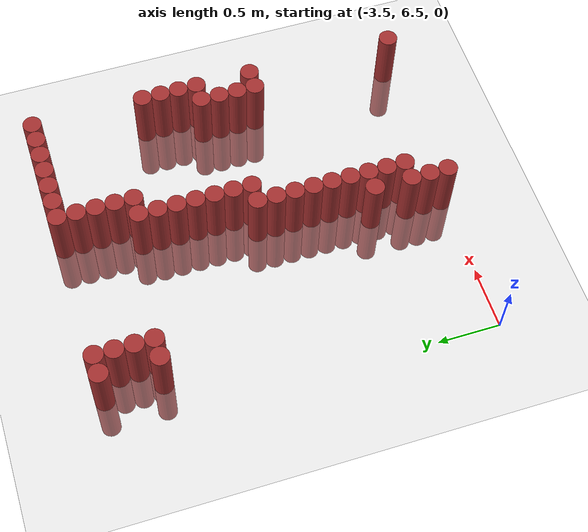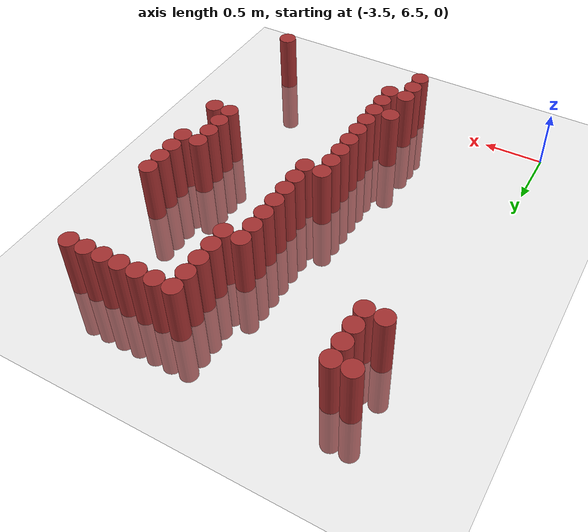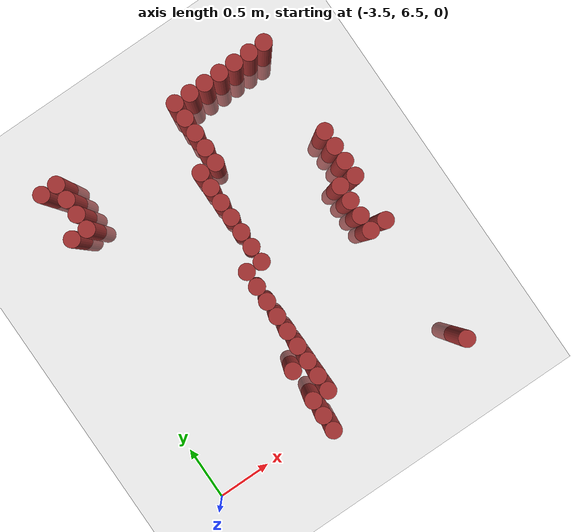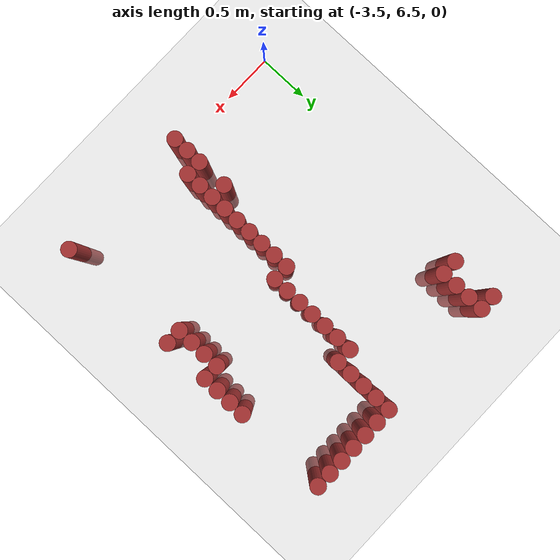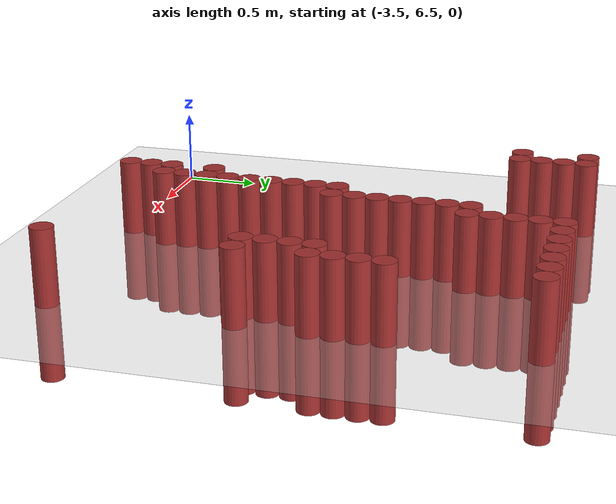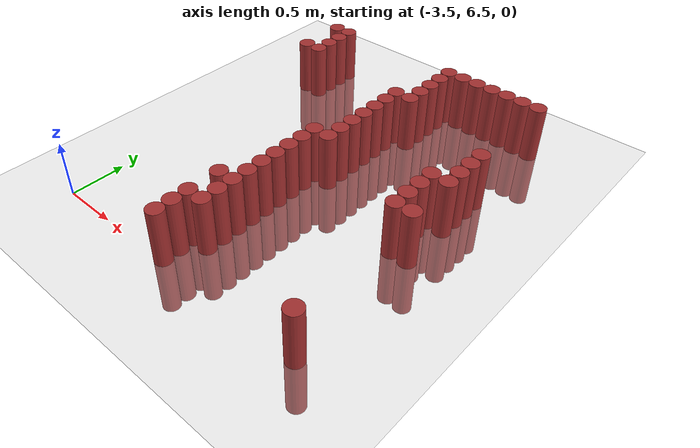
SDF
<sdf version="1.6">
 <world name="default">
  <model name="ground_plane">
   <static>1</static>
   <link name="link">
    <collision name="collision">
     <geometry><plane><normal>0 0 1</normal><size>100 100</size></plane></geometry>
     <surface><friction><ode><mu>100</mu><mu2>50</mu2></ode></friction></surface>
    </collision>
    <visual name="visual">
     <cast_shadows>0</cast_shadows>
     <geometry><plane><normal>0 0 1</normal><size>100 100</size></plane></geometry>
     <material>
      <script><uri>file://media/materials/scripts/gazebo.material</uri><name>Gazebo/Grey</name></script>
     </material>
    </visual>
   </link>
  </model>
  <model name="unit_cylinder_165">
   <static>1</static>
   <pose>-3.225000 9.075000 0.000000 0.000000 0.000000 0.000000</pose>
   <link name="link">
    <inertial>
     <mass>1</mass>
     <inertia><ixx>0.145833</ixx><ixy>0</ixy><ixz>0</ixz><iyy>0.145833</iyy><iyz>0</iyz><izz>0.125</izz></inertia>
    </inertial>
    <collision name="collision">
     <geometry><cylinder><radius>0.075000</radius><length>1</length></cylinder></geometry>
    </collision>
    <visual name="visual">
     <geometry><cylinder><radius>0.075000</radius><length>1</length></cylinder></geometry>
     <material>
      <ambient>0.648000 0.192000 0.192000 1</ambient>
      <diffuse>0.648000 0.192000 0.192000 1</diffuse>
     </material>
     <material>
      <script><name>Gazebo/Grey</name><uri>file://media/materials/scripts/gazebo.material</uri></script>
     </material>
    </visual>
   </link>
  </model>
  <model name="unit_cylinder_166">
   <static>1</static>
   <pose>-3.225000 9.525000 0.000000 0.000000 0.000000 0.000000</pose>
   <link name="link">
    <inertial>
     <mass>1</mass>
     <inertia><ixx>0.145833</ixx><ixy>0</ixy><ixz>0</ixz><iyy>0.145833</iyy><iyz>0</iyz><izz>0.125</izz></inertia>
    </inertial>
    <collision name="collision">
     <geometry><cylinder><radius>0.075000</radius><length>1</length></cylinder></geometry>
    </collision>
    <visual name="visual">
     <geometry><cylinder><radius>0.075000</radius><length>1</length></cylinder></geometry>
     <material>
      <ambient>0.648000 0.192000 0.192000 1</ambient>
      <diffuse>0.648000 0.192000 0.192000 1</diffuse>
     </material>
     <material>
      <script><name>Gazebo/Grey</name><uri>file://media/materials/scripts/gazebo.material</uri></script>
     </material>
    </visual>
   </link>
  </model>
  <model name="unit_cylinder_167">
   <static>1</static>
   <pose>-3.075000 9.075000 0.000000 0.000000 0.000000 0.000000</pose>
   <link name="link">
    <inertial>
     <mass>1</mass>
     <inertia><ixx>0.145833</ixx><ixy>0</ixy><ixz>0</ixz><iyy>0.145833</iyy><iyz>0</iyz><izz>0.125</izz></inertia>
    </inertial>
    <collision name="collision">
     <geometry><cylinder><radius>0.075000</radius><length>1</length></cylinder></geometry>
    </collision>
    <visual name="visual">
     <geometry><cylinder><radius>0.075000</radius><length>1</length></cylinder></geometry>
     <material>
      <ambient>0.648000 0.192000 0.192000 1</ambient>
      <diffuse>0.648000 0.192000 0.192000 1</diffuse>
     </material>
     <material>
      <script><name>Gazebo/Grey</name><uri>file://media/materials/scripts/gazebo.material</uri></script>
     </material>
    </visual>
   </link>
  </model>
  <model name="unit_cylinder_168">
   <static>1</static>
   <pose>-3.075000 9.225000 0.000000 0.000000 0.000000 0.000000</pose>
   <link name="link">
    <inertial>
     <mass>1</mass>
     <inertia><ixx>0.145833</ixx><ixy>0</ixy><ixz>0</ixz><iyy>0.145833</iyy><iyz>0</iyz><izz>0.125</izz></inertia>
    </inertial>
    <collision name="collision">
     <geometry><cylinder><radius>0.075000</radius><length>1</length></cylinder></geometry>
    </collision>
    <visual name="visual">
     <geometry><cylinder><radius>0.075000</radius><length>1</length></cylinder></geometry>
     <material>
      <ambient>0.648000 0.192000 0.192000 1</ambient>
      <diffuse>0.648000 0.192000 0.192000 1</diffuse>
     </material>
     <material>
      <script><name>Gazebo/Grey</name><uri>file://media/materials/scripts/gazebo.material</uri></script>
     </material>
    </visual>
   </link>
  </model>
  <model name="unit_cylinder_169">
   <static>1</static>
   <pose>-3.075000 9.375000 0.000000 0.000000 0.000000 0.000000</pose>
   <link name="link">
    <inertial>
     <mass>1</mass>
     <inertia><ixx>0.145833</ixx><ixy>0</ixy><ixz>0</ixz><iyy>0.145833</iyy><iyz>0</iyz><izz>0.125</izz></inertia>
    </inertial>
    <collision name="collision">
     <geometry><cylinder><radius>0.075000</radius><length>1</length></cylinder></geometry>
    </collision>
    <visual name="visual">
     <geometry><cylinder><radius>0.075000</radius><length>1</length></cylinder></geometry>
     <material>
      <ambient>0.648000 0.192000 0.192000 1</ambient>
      <diffuse>0.648000 0.192000 0.192000 1</diffuse>
     </material>
     <material>
      <script><name>Gazebo/Grey</name><uri>file://media/materials/scripts/gazebo.material</uri></script>
     </material>
    </visual>
   </link>
  </model>
  <model name="unit_cylinder_170">
   <static>1</static>
   <pose>-3.075000 9.525000 0.000000 0.000000 0.000000 0.000000</pose>
   <link name="link">
    <inertial>
     <mass>1</mass>
     <inertia><ixx>0.145833</ixx><ixy>0</ixy><ixz>0</ixz><iyy>0.145833</iyy><iyz>0</iyz><izz>0.125</izz></inertia>
    </inertial>
    <collision name="collision">
     <geometry><cylinder><radius>0.075000</radius><length>1</length></cylinder></geometry>
    </collision>
    <visual name="visual">
     <geometry><cylinder><radius>0.075000</radius><length>1</length></cylinder></geometry>
     <material>
      <ambient>0.648000 0.192000 0.192000 1</ambient>
      <diffuse>0.648000 0.192000 0.192000 1</diffuse>
     </material>
     <material>
      <script><name>Gazebo/Grey</name><uri>file://media/materials/scripts/gazebo.material</uri></script>
     </material>
    </visual>
   </link>
  </model>
  <model name="unit_cylinder_173">
   <static>1</static>
   <pose>-2.325000 6.525000 0.000000 0.000000 0.000000 0.000000</pose>
   <link name="link">
    <inertial>
     <mass>1</mass>
     <inertia><ixx>0.145833</ixx><ixy>0</ixy><ixz>0</ixz><iyy>0.145833</iyy><iyz>0</iyz><izz>0.125</izz></inertia>
    </inertial>
    <collision name="collision">
     <geometry><cylinder><radius>0.075000</radius><length>1</length></cylinder></geometry>
    </collision>
    <visual name="visual">
     <geometry><cylinder><radius>0.075000</radius><length>1</length></cylinder></geometry>
     <material>
      <ambient>0.648000 0.192000 0.192000 1</ambient>
      <diffuse>0.648000 0.192000 0.192000 1</diffuse>
     </material>
     <material>
      <script><name>Gazebo/Grey</name><uri>file://media/materials/scripts/gazebo.material</uri></script>
     </material>
    </visual>
   </link>
  </model>
  <model name="unit_cylinder_174">
   <static>1</static>
   <pose>-2.325000 6.675000 0.000000 0.000000 0.000000 0.000000</pose>
   <link name="link">
    <inertial>
     <mass>1</mass>
     <inertia><ixx>0.145833</ixx><ixy>0</ixy><ixz>0</ixz><iyy>0.145833</iyy><iyz>0</iyz><izz>0.125</izz></inertia>
    </inertial>
    <collision name="collision">
     <geometry><cylinder><radius>0.075000</radius><length>1</length></cylinder></geometry>
    </collision>
    <visual name="visual">
     <geometry><cylinder><radius>0.075000</radius><length>1</length></cylinder></geometry>
     <material>
      <ambient>0.648000 0.192000 0.192000 1</ambient>
      <diffuse>0.648000 0.192000 0.192000 1</diffuse>
     </material>
     <material>
      <script><name>Gazebo/Grey</name><uri>file://media/materials/scripts/gazebo.material</uri></script>
     </material>
    </visual>
   </link>
  </model>
  <model name="unit_cylinder_175">
   <static>1</static>
   <pose>-2.325000 6.825000 0.000000 0.000000 0.000000 0.000000</pose>
   <link name="link">
    <inertial>
     <mass>1</mass>
     <inertia><ixx>0.145833</ixx><ixy>0</ixy><ixz>0</ixz><iyy>0.145833</iyy><iyz>0</iyz><izz>0.125</izz></inertia>
    </inertial>
    <collision name="collision">
     <geometry><cylinder><radius>0.075000</radius><length>1</length></cylinder></geometry>
    </collision>
    <visual name="visual">
     <geometry><cylinder><radius>0.075000</radius><length>1</length></cylinder></geometry>
     <material>
      <ambient>0.648000 0.192000 0.192000 1</ambient>
      <diffuse>0.648000 0.192000 0.192000 1</diffuse>
     </material>
     <material>
      <script><name>Gazebo/Grey</name><uri>file://media/materials/scripts/gazebo.material</uri></script>
     </material>
    </visual>
   </link>
  </model>
  <model name="unit_cylinder_176">
   <static>1</static>
   <pose>-2.325000 7.125000 0.000000 0.000000 0.000000 0.000000</pose>
   <link name="link">
    <inertial>
     <mass>1</mass>
     <inertia><ixx>0.145833</ixx><ixy>0</ixy><ixz>0</ixz><iyy>0.145833</iyy><iyz>0</iyz><izz>0.125</izz></inertia>
    </inertial>
    <collision name="collision">
     <geometry><cylinder><radius>0.075000</radius><length>1</length></cylinder></geometry>
    </collision>
    <visual name="visual">
     <geometry><cylinder><radius>0.075000</radius><length>1</length></cylinder></geometry>
     <material>
      <ambient>0.648000 0.192000 0.192000 1</ambient>
      <diffuse>0.648000 0.192000 0.192000 1</diffuse>
     </material>
     <material>
      <script><name>Gazebo/Grey</name><uri>file://media/materials/scripts/gazebo.material</uri></script>
     </material>
    </visual>
   </link>
  </model>
  <model name="unit_cylinder_179">
   <static>1</static>
   <pose>-2.175000 6.825000 0.000000 0.000000 0.000000 0.000000</pose>
   <link name="link">
    <inertial>
     <mass>1</mass>
     <inertia><ixx>0.145833</ixx><ixy>0</ixy><ixz>0</ixz><iyy>0.145833</iyy><iyz>0</iyz><izz>0.125</izz></inertia>
    </inertial>
    <collision name="collision">
     <geometry><cylinder><radius>0.075000</radius><length>1</length></cylinder></geometry>
    </collision>
    <visual name="visual">
     <geometry><cylinder><radius>0.075000</radius><length>1</length></cylinder></geometry>
     <material>
      <ambient>0.648000 0.192000 0.192000 1</ambient>
      <diffuse>0.648000 0.192000 0.192000 1</diffuse>
     </material>
     <material>
      <script><name>Gazebo/Grey</name><uri>file://media/materials/scripts/gazebo.material</uri></script>
     </material>
    </visual>
   </link>
  </model>
  <model name="unit_cylinder_180">
   <static>1</static>
   <pose>-2.175000 6.975000 0.000000 0.000000 0.000000 0.000000</pose>
   <link name="link">
    <inertial>
     <mass>1</mass>
     <inertia><ixx>0.145833</ixx><ixy>0</ixy><ixz>0</ixz><iyy>0.145833</iyy><iyz>0</iyz><izz>0.125</izz></inertia>
    </inertial>
    <collision name="collision">
     <geometry><cylinder><radius>0.075000</radius><length>1</length></cylinder></geometry>
    </collision>
    <visual name="visual">
     <geometry><cylinder><radius>0.075000</radius><length>1</length></cylinder></geometry>
     <material>
      <ambient>0.648000 0.192000 0.192000 1</ambient>
      <diffuse>0.648000 0.192000 0.192000 1</diffuse>
     </material>
     <material>
      <script><name>Gazebo/Grey</name><uri>file://media/materials/scripts/gazebo.material</uri></script>
     </material>
    </visual>
   </link>
  </model>
  <model name="unit_cylinder_181">
   <static>1</static>
   <pose>-2.175000 7.125000 0.000000 0.000000 0.000000 0.000000</pose>
   <link name="link">
    <inertial>
     <mass>1</mass>
     <inertia><ixx>0.145833</ixx><ixy>0</ixy><ixz>0</ixz><iyy>0.145833</iyy><iyz>0</iyz><izz>0.125</izz></inertia>
    </inertial>
    <collision name="collision">
     <geometry><cylinder><radius>0.075000</radius><length>1</length></cylinder></geometry>
    </collision>
    <visual name="visual">
     <geometry><cylinder><radius>0.075000</radius><length>1</length></cylinder></geometry>
     <material>
      <ambient>0.648000 0.192000 0.192000 1</ambient>
      <diffuse>0.648000 0.192000 0.192000 1</diffuse>
     </material>
     <material>
      <script><name>Gazebo/Grey</name><uri>file://media/materials/scripts/gazebo.material</uri></script>
     </material>
    </visual>
   </link>
  </model>
  <model name="unit_cylinder_182">
   <static>1</static>
   <pose>-2.175000 7.275000 0.000000 0.000000 0.000000 0.000000</pose>
   <link name="link">
    <inertial>
     <mass>1</mass>
     <inertia><ixx>0.145833</ixx><ixy>0</ixy><ixz>0</ixz><iyy>0.145833</iyy><iyz>0</iyz><izz>0.125</izz></inertia>
    </inertial>
    <collision name="collision">
     <geometry><cylinder><radius>0.075000</radius><length>1</length></cylinder></geometry>
    </collision>
    <visual name="visual">
     <geometry><cylinder><radius>0.075000</radius><length>1</length></cylinder></geometry>
     <material>
      <ambient>0.648000 0.192000 0.192000 1</ambient>
      <diffuse>0.648000 0.192000 0.192000 1</diffuse>
     </material>
     <material>
      <script><name>Gazebo/Grey</name><uri>file://media/materials/scripts/gazebo.material</uri></script>
     </material>
    </visual>
   </link>
  </model>
  <model name="unit_cylinder_183">
   <static>1</static>
   <pose>-2.175000 7.425000 0.000000 0.000000 0.000000 0.000000</pose>
   <link name="link">
    <inertial>
     <mass>1</mass>
     <inertia><ixx>0.145833</ixx><ixy>0</ixy><ixz>0</ixz><iyy>0.145833</iyy><iyz>0</iyz><izz>0.125</izz></inertia>
    </inertial>
    <collision name="collision">
     <geometry><cylinder><radius>0.075000</radius><length>1</length></cylinder></geometry>
    </collision>
    <visual name="visual">
     <geometry><cylinder><radius>0.075000</radius><length>1</length></cylinder></geometry>
     <material>
      <ambient>0.648000 0.192000 0.192000 1</ambient>
      <diffuse>0.648000 0.192000 0.192000 1</diffuse>
     </material>
     <material>
      <script><name>Gazebo/Grey</name><uri>file://media/materials/scripts/gazebo.material</uri></script>
     </material>
    </visual>
   </link>
  </model>
  <model name="unit_cylinder_184">
   <static>1</static>
   <pose>-2.175000 7.575000 0.000000 0.000000 0.000000 0.000000</pose>
   <link name="link">
    <inertial>
     <mass>1</mass>
     <inertia><ixx>0.145833</ixx><ixy>0</ixy><ixz>0</ixz><iyy>0.145833</iyy><iyz>0</iyz><izz>0.125</izz></inertia>
    </inertial>
    <collision name="collision">
     <geometry><cylinder><radius>0.075000</radius><length>1</length></cylinder></geometry>
    </collision>
    <visual name="visual">
     <geometry><cylinder><radius>0.075000</radius><length>1</length></cylinder></geometry>
     <material>
      <ambient>0.648000 0.192000 0.192000 1</ambient>
      <diffuse>0.648000 0.192000 0.192000 1</diffuse>
     </material>
     <material>
      <script><name>Gazebo/Grey</name><uri>file://media/materials/scripts/gazebo.material</uri></script>
     </material>
    </visual>
   </link>
  </model>
  <model name="unit_cylinder_185">
   <static>1</static>
   <pose>-2.175000 7.725000 0.000000 0.000000 0.000000 0.000000</pose>
   <link name="link">
    <inertial>
     <mass>1</mass>
     <inertia><ixx>0.145833</ixx><ixy>0</ixy><ixz>0</ixz><iyy>0.145833</iyy><iyz>0</iyz><izz>0.125</izz></inertia>
    </inertial>
    <collision name="collision">
     <geometry><cylinder><radius>0.075000</radius><length>1</length></cylinder></geometry>
    </collision>
    <visual name="visual">
     <geometry><cylinder><radius>0.075000</radius><length>1</length></cylinder></geometry>
     <material>
      <ambient>0.648000 0.192000 0.192000 1</ambient>
      <diffuse>0.648000 0.192000 0.192000 1</diffuse>
     </material>
     <material>
      <script><name>Gazebo/Grey</name><uri>file://media/materials/scripts/gazebo.material</uri></script>
     </material>
    </visual>
   </link>
  </model>
  <model name="unit_cylinder_186">
   <static>1</static>
   <pose>-2.175000 7.875000 0.000000 0.000000 0.000000 0.000000</pose>
   <link name="link">
    <inertial>
     <mass>1</mass>
     <inertia><ixx>0.145833</ixx><ixy>0</ixy><ixz>0</ixz><iyy>0.145833</iyy><iyz>0</iyz><izz>0.125</izz></inertia>
    </inertial>
    <collision name="collision">
     <geometry><cylinder><radius>0.075000</radius><length>1</length></cylinder></geometry>
    </collision>
    <visual name="visual">
     <geometry><cylinder><radius>0.075000</radius><length>1</length></cylinder></geometry>
     <material>
      <ambient>0.648000 0.192000 0.192000 1</ambient>
      <diffuse>0.648000 0.192000 0.192000 1</diffuse>
     </material>
     <material>
      <script><name>Gazebo/Grey</name><uri>file://media/materials/scripts/gazebo.material</uri></script>
     </material>
    </visual>
   </link>
  </model>
  <model name="unit_cylinder_187">
   <static>1</static>
   <pose>-2.175000 8.025000 0.000000 0.000000 0.000000 0.000000</pose>
   <link name="link">
    <inertial>
     <mass>1</mass>
     <inertia><ixx>0.145833</ixx><ixy>0</ixy><ixz>0</ixz><iyy>0.145833</iyy><iyz>0</iyz><izz>0.125</izz></inertia>
    </inertial>
    <collision name="collision">
     <geometry><cylinder><radius>0.075000</radius><length>1</length></cylinder></geometry>
    </collision>
    <visual name="visual">
     <geometry><cylinder><radius>0.075000</radius><length>1</length></cylinder></geometry>
     <material>
      <ambient>0.648000 0.192000 0.192000 1</ambient>
      <diffuse>0.648000 0.192000 0.192000 1</diffuse>
     </material>
     <material>
      <script><name>Gazebo/Grey</name><uri>file://media/materials/scripts/gazebo.material</uri></script>
     </material>
    </visual>
   </link>
  </model>
  <model name="unit_cylinder_190">
   <static>1</static>
   <pose>-2.025000 8.025000 0.000000 0.000000 0.000000 0.000000</pose>
   <link name="link">
    <inertial>
     <mass>1</mass>
     <inertia><ixx>0.145833</ixx><ixy>0</ixy><ixz>0</ixz><iyy>0.145833</iyy><iyz>0</iyz><izz>0.125</izz></inertia>
    </inertial>
    <collision name="collision">
     <geometry><cylinder><radius>0.075000</radius><length>1</length></cylinder></geometry>
    </collision>
    <visual name="visual">
     <geometry><cylinder><radius>0.075000</radius><length>1</length></cylinder></geometry>
     <material>
      <ambient>0.648000 0.192000 0.192000 1</ambient>
      <diffuse>0.648000 0.192000 0.192000 1</diffuse>
     </material>
     <material>
      <script><name>Gazebo/Grey</name><uri>file://media/materials/scripts/gazebo.material</uri></script>
     </material>
    </visual>
   </link>
  </model>
  <model name="unit_cylinder_191">
   <static>1</static>
   <pose>-2.025000 8.175000 0.000000 0.000000 0.000000 0.000000</pose>
   <link name="link">
    <inertial>
     <mass>1</mass>
     <inertia><ixx>0.145833</ixx><ixy>0</ixy><ixz>0</ixz><iyy>0.145833</iyy><iyz>0</iyz><izz>0.125</izz></inertia>
    </inertial>
    <collision name="collision">
     <geometry><cylinder><radius>0.075000</radius><length>1</length></cylinder></geometry>
    </collision>
    <visual name="visual">
     <geometry><cylinder><radius>0.075000</radius><length>1</length></cylinder></geometry>
     <material>
      <ambient>0.648000 0.192000 0.192000 1</ambient>
      <diffuse>0.648000 0.192000 0.192000 1</diffuse>
     </material>
     <material>
      <script><name>Gazebo/Grey</name><uri>file://media/materials/scripts/gazebo.material</uri></script>
     </material>
    </visual>
   </link>
  </model>
  <model name="unit_cylinder_192">
   <static>1</static>
   <pose>-2.025000 8.325000 0.000000 0.000000 0.000000 0.000000</pose>
   <link name="link">
    <inertial>
     <mass>1</mass>
     <inertia><ixx>0.145833</ixx><ixy>0</ixy><ixz>0</ixz><iyy>0.145833</iyy><iyz>0</iyz><izz>0.125</izz></inertia>
    </inertial>
    <collision name="collision">
     <geometry><cylinder><radius>0.075000</radius><length>1</length></cylinder></geometry>
    </collision>
    <visual name="visual">
     <geometry><cylinder><radius>0.075000</radius><length>1</length></cylinder></geometry>
     <material>
      <ambient>0.648000 0.192000 0.192000 1</ambient>
      <diffuse>0.648000 0.192000 0.192000 1</diffuse>
     </material>
     <material>
      <script><name>Gazebo/Grey</name><uri>file://media/materials/scripts/gazebo.material</uri></script>
     </material>
    </visual>
   </link>
  </model>
  <model name="unit_cylinder_193">
   <static>1</static>
   <pose>-2.025000 8.475000 0.000000 0.000000 0.000000 0.000000</pose>
   <link name="link">
    <inertial>
     <mass>1</mass>
     <inertia><ixx>0.145833</ixx><ixy>0</ixy><ixz>0</ixz><iyy>0.145833</iyy><iyz>0</iyz><izz>0.125</izz></inertia>
    </inertial>
    <collision name="collision">
     <geometry><cylinder><radius>0.075000</radius><length>1</length></cylinder></geometry>
    </collision>
    <visual name="visual">
     <geometry><cylinder><radius>0.075000</radius><length>1</length></cylinder></geometry>
     <material>
      <ambient>0.648000 0.192000 0.192000 1</ambient>
      <diffuse>0.648000 0.192000 0.192000 1</diffuse>
     </material>
     <material>
      <script><name>Gazebo/Grey</name><uri>file://media/materials/scripts/gazebo.material</uri></script>
     </material>
    </visual>
   </link>
  </model>
  <model name="unit_cylinder_194">
   <static>1</static>
   <pose>-2.025000 8.625000 0.000000 0.000000 0.000000 0.000000</pose>
   <link name="link">
    <inertial>
     <mass>1</mass>
     <inertia><ixx>0.145833</ixx><ixy>0</ixy><ixz>0</ixz><iyy>0.145833</iyy><iyz>0</iyz><izz>0.125</izz></inertia>
    </inertial>
    <collision name="collision">
     <geometry><cylinder><radius>0.075000</radius><length>1</length></cylinder></geometry>
    </collision>
    <visual name="visual">
     <geometry><cylinder><radius>0.075000</radius><length>1</length></cylinder></geometry>
     <material>
      <ambient>0.648000 0.192000 0.192000 1</ambient>
      <diffuse>0.648000 0.192000 0.192000 1</diffuse>
     </material>
     <material>
      <script><name>Gazebo/Grey</name><uri>file://media/materials/scripts/gazebo.material</uri></script>
     </material>
    </visual>
   </link>
  </model>
  <model name="unit_cylinder_195">
   <static>1</static>
   <pose>-2.025000 8.775000 0.000000 0.000000 0.000000 0.000000</pose>
   <link name="link">
    <inertial>
     <mass>1</mass>
     <inertia><ixx>0.145833</ixx><ixy>0</ixy><ixz>0</ixz><iyy>0.145833</iyy><iyz>0</iyz><izz>0.125</izz></inertia>
    </inertial>
    <collision name="collision">
     <geometry><cylinder><radius>0.075000</radius><length>1</length></cylinder></geometry>
    </collision>
    <visual name="visual">
     <geometry><cylinder><radius>0.075000</radius><length>1</length></cylinder></geometry>
     <material>
      <ambient>0.648000 0.192000 0.192000 1</ambient>
      <diffuse>0.648000 0.192000 0.192000 1</diffuse>
     </material>
     <material>
      <script><name>Gazebo/Grey</name><uri>file://media/materials/scripts/gazebo.material</uri></script>
     </material>
    </visual>
   </link>
  </model>
  <model name="unit_cylinder_196">
   <static>1</static>
   <pose>-2.025000 8.925000 0.000000 0.000000 0.000000 0.000000</pose>
   <link name="link">
    <inertial>
     <mass>1</mass>
     <inertia><ixx>0.145833</ixx><ixy>0</ixy><ixz>0</ixz><iyy>0.145833</iyy><iyz>0</iyz><izz>0.125</izz></inertia>
    </inertial>
    <collision name="collision">
     <geometry><cylinder><radius>0.075000</radius><length>1</length></cylinder></geometry>
    </collision>
    <visual name="visual">
     <geometry><cylinder><radius>0.075000</radius><length>1</length></cylinder></geometry>
     <material>
      <ambient>0.648000 0.192000 0.192000 1</ambient>
      <diffuse>0.648000 0.192000 0.192000 1</diffuse>
     </material>
     <material>
      <script><name>Gazebo/Grey</name><uri>file://media/materials/scripts/gazebo.material</uri></script>
     </material>
    </visual>
   </link>
  </model>
  <model name="unit_cylinder_198">
   <static>1</static>
   <pose>-1.875000 8.925000 0.000000 0.000000 0.000000 0.000000</pose>
   <link name="link">
    <inertial>
     <mass>1</mass>
     <inertia><ixx>0.145833</ixx><ixy>0</ixy><ixz>0</ixz><iyy>0.145833</iyy><iyz>0</iyz><izz>0.125</izz></inertia>
    </inertial>
    <collision name="collision">
     <geometry><cylinder><radius>0.075000</radius><length>1</length></cylinder></geometry>
    </collision>
    <visual name="visual">
     <geometry><cylinder><radius>0.075000</radius><length>1</length></cylinder></geometry>
     <material>
      <ambient>0.648000 0.192000 0.192000 1</ambient>
      <diffuse>0.648000 0.192000 0.192000 1</diffuse>
     </material>
     <material>
      <script><name>Gazebo/Grey</name><uri>file://media/materials/scripts/gazebo.material</uri></script>
     </material>
    </visual>
   </link>
  </model>
  <model name="unit_cylinder_199">
   <static>1</static>
   <pose>-1.875000 9.075000 0.000000 0.000000 0.000000 0.000000</pose>
   <link name="link">
    <inertial>
     <mass>1</mass>
     <inertia><ixx>0.145833</ixx><ixy>0</ixy><ixz>0</ixz><iyy>0.145833</iyy><iyz>0</iyz><izz>0.125</izz></inertia>
    </inertial>
    <collision name="collision">
     <geometry><cylinder><radius>0.075000</radius><length>1</length></cylinder></geometry>
    </collision>
    <visual name="visual">
     <geometry><cylinder><radius>0.075000</radius><length>1</length></cylinder></geometry>
     <material>
      <ambient>0.648000 0.192000 0.192000 1</ambient>
      <diffuse>0.648000 0.192000 0.192000 1</diffuse>
     </material>
     <material>
      <script><name>Gazebo/Grey</name><uri>file://media/materials/scripts/gazebo.material</uri></script>
     </material>
    </visual>
   </link>
  </model>
  <model name="unit_cylinder_200">
   <static>1</static>
   <pose>-1.875000 9.225000 0.000000 0.000000 0.000000 0.000000</pose>
   <link name="link">
    <inertial>
     <mass>1</mass>
     <inertia><ixx>0.145833</ixx><ixy>0</ixy><ixz>0</ixz><iyy>0.145833</iyy><iyz>0</iyz><izz>0.125</izz></inertia>
    </inertial>
    <collision name="collision">
     <geometry><cylinder><radius>0.075000</radius><length>1</length></cylinder></geometry>
    </collision>
    <visual name="visual">
     <geometry><cylinder><radius>0.075000</radius><length>1</length></cylinder></geometry>
     <material>
      <ambient>0.648000 0.192000 0.192000 1</ambient>
      <diffuse>0.648000 0.192000 0.192000 1</diffuse>
     </material>
     <material>
      <script><name>Gazebo/Grey</name><uri>file://media/materials/scripts/gazebo.material</uri></script>
     </material>
    </visual>
   </link>
  </model>
  <model name="unit_cylinder_201">
   <static>1</static>
   <pose>-1.875000 9.375000 0.000000 0.000000 0.000000 0.000000</pose>
   <link name="link">
    <inertial>
     <mass>1</mass>
     <inertia><ixx>0.145833</ixx><ixy>0</ixy><ixz>0</ixz><iyy>0.145833</iyy><iyz>0</iyz><izz>0.125</izz></inertia>
    </inertial>
    <collision name="collision">
     <geometry><cylinder><radius>0.075000</radius><length>1</length></cylinder></geometry>
    </collision>
    <visual name="visual">
     <geometry><cylinder><radius>0.075000</radius><length>1</length></cylinder></geometry>
     <material>
      <ambient>0.648000 0.192000 0.192000 1</ambient>
      <diffuse>0.648000 0.192000 0.192000 1</diffuse>
     </material>
     <material>
      <script><name>Gazebo/Grey</name><uri>file://media/materials/scripts/gazebo.material</uri></script>
     </material>
    </visual>
   </link>
  </model>
  <model name="unit_cylinder_202">
   <static>1</static>
   <pose>-1.875000 9.525000 0.000000 0.000000 0.000000 0.000000</pose>
   <link name="link">
    <inertial>
     <mass>1</mass>
     <inertia><ixx>0.145833</ixx><ixy>0</ixy><ixz>0</ixz><iyy>0.145833</iyy><iyz>0</iyz><izz>0.125</izz></inertia>
    </inertial>
    <collision name="collision">
     <geometry><cylinder><radius>0.075000</radius><length>1</length></cylinder></geometry>
    </collision>
    <visual name="visual">
     <geometry><cylinder><radius>0.075000</radius><length>1</length></cylinder></geometry>
     <material>
      <ambient>0.648000 0.192000 0.192000 1</ambient>
      <diffuse>0.648000 0.192000 0.192000 1</diffuse>
     </material>
     <material>
      <script><name>Gazebo/Grey</name><uri>file://media/materials/scripts/gazebo.material</uri></script>
     </material>
    </visual>
   </link>
  </model>
  <model name="unit_cylinder_204">
   <static>1</static>
   <pose>-1.725000 9.525000 0.000000 0.000000 0.000000 0.000000</pose>
   <link name="link">
    <inertial>
     <mass>1</mass>
     <inertia><ixx>0.145833</ixx><ixy>0</ixy><ixz>0</ixz><iyy>0.145833</iyy><iyz>0</iyz><izz>0.125</izz></inertia>
    </inertial>
    <collision name="collision">
     <geometry><cylinder><radius>0.075000</radius><length>1</length></cylinder></geometry>
    </collision>
    <visual name="visual">
     <geometry><cylinder><radius>0.075000</radius><length>1</length></cylinder></geometry>
     <material>
      <ambient>0.648000 0.192000 0.192000 1</ambient>
      <diffuse>0.648000 0.192000 0.192000 1</diffuse>
     </material>
     <material>
      <script><name>Gazebo/Grey</name><uri>file://media/materials/scripts/gazebo.material</uri></script>
     </material>
    </visual>
   </link>
  </model>
  <model name="unit_cylinder_207">
   <static>1</static>
   <pose>-1.575000 9.525000 0.000000 0.000000 0.000000 0.000000</pose>
   <link name="link">
    <inertial>
     <mass>1</mass>
     <inertia><ixx>0.145833</ixx><ixy>0</ixy><ixz>0</ixz><iyy>0.145833</iyy><iyz>0</iyz><izz>0.125</izz></inertia>
    </inertial>
    <collision name="collision">
     <geometry><cylinder><radius>0.075000</radius><length>1</length></cylinder></geometry>
    </collision>
    <visual name="visual">
     <geometry><cylinder><radius>0.075000</radius><length>1</length></cylinder></geometry>
     <material>
      <ambient>0.648000 0.192000 0.192000 1</ambient>
      <diffuse>0.648000 0.192000 0.192000 1</diffuse>
     </material>
     <material>
      <script><name>Gazebo/Grey</name><uri>file://media/materials/scripts/gazebo.material</uri></script>
     </material>
    </visual>
   </link>
  </model>
  <model name="unit_cylinder_209">
   <static>1</static>
   <pose>-1.425000 9.525000 0.000000 0.000000 0.000000 0.000000</pose>
   <link name="link">
    <inertial>
     <mass>1</mass>
     <inertia><ixx>0.145833</ixx><ixy>0</ixy><ixz>0</ixz><iyy>0.145833</iyy><iyz>0</iyz><izz>0.125</izz></inertia>
    </inertial>
    <collision name="collision">
     <geometry><cylinder><radius>0.075000</radius><length>1</length></cylinder></geometry>
    </collision>
    <visual name="visual">
     <geometry><cylinder><radius>0.075000</radius><length>1</length></cylinder></geometry>
     <material>
      <ambient>0.648000 0.192000 0.192000 1</ambient>
      <diffuse>0.648000 0.192000 0.192000 1</diffuse>
     </material>
     <material>
      <script><name>Gazebo/Grey</name><uri>file://media/materials/scripts/gazebo.material</uri></script>
     </material>
    </visual>
   </link>
  </model>
  <model name="unit_cylinder_211">
   <static>1</static>
   <pose>-1.275000 9.525000 0.000000 0.000000 0.000000 0.000000</pose>
   <link name="link">
    <inertial>
     <mass>1</mass>
     <inertia><ixx>0.145833</ixx><ixy>0</ixy><ixz>0</ixz><iyy>0.145833</iyy><iyz>0</iyz><izz>0.125</izz></inertia>
    </inertial>
    <collision name="collision">
     <geometry><cylinder><radius>0.075000</radius><length>1</length></cylinder></geometry>
    </collision>
    <visual name="visual">
     <geometry><cylinder><radius>0.075000</radius><length>1</length></cylinder></geometry>
     <material>
      <ambient>0.648000 0.192000 0.192000 1</ambient>
      <diffuse>0.648000 0.192000 0.192000 1</diffuse>
     </material>
     <material>
      <script><name>Gazebo/Grey</name><uri>file://media/materials/scripts/gazebo.material</uri></script>
     </material>
    </visual>
   </link>
  </model>
  <model name="unit_cylinder_214">
   <static>1</static>
   <pose>-1.125000 7.725000 0.000000 0.000000 0.000000 0.000000</pose>
   <link name="link">
    <inertial>
     <mass>1</mass>
     <inertia><ixx>0.145833</ixx><ixy>0</ixy><ixz>0</ixz><iyy>0.145833</iyy><iyz>0</iyz><izz>0.125</izz></inertia>
    </inertial>
    <collision name="collision">
     <geometry><cylinder><radius>0.075000</radius><length>1</length></cylinder></geometry>
    </collision>
    <visual name="visual">
     <geometry><cylinder><radius>0.075000</radius><length>1</length></cylinder></geometry>
     <material>
      <ambient>0.648000 0.192000 0.192000 1</ambient>
      <diffuse>0.648000 0.192000 0.192000 1</diffuse>
     </material>
     <material>
      <script><name>Gazebo/Grey</name><uri>file://media/materials/scripts/gazebo.material</uri></script>
     </material>
    </visual>
   </link>
  </model>
  <model name="unit_cylinder_215">
   <static>1</static>
   <pose>-1.125000 7.875000 0.000000 0.000000 0.000000 0.000000</pose>
   <link name="link">
    <inertial>
     <mass>1</mass>
     <inertia><ixx>0.145833</ixx><ixy>0</ixy><ixz>0</ixz><iyy>0.145833</iyy><iyz>0</iyz><izz>0.125</izz></inertia>
    </inertial>
    <collision name="collision">
     <geometry><cylinder><radius>0.075000</radius><length>1</length></cylinder></geometry>
    </collision>
    <visual name="visual">
     <geometry><cylinder><radius>0.075000</radius><length>1</length></cylinder></geometry>
     <material>
      <ambient>0.648000 0.192000 0.192000 1</ambient>
      <diffuse>0.648000 0.192000 0.192000 1</diffuse>
     </material>
     <material>
      <script><name>Gazebo/Grey</name><uri>file://media/materials/scripts/gazebo.material</uri></script>
     </material>
    </visual>
   </link>
  </model>
  <model name="unit_cylinder_216">
   <static>1</static>
   <pose>-1.125000 8.025000 0.000000 0.000000 0.000000 0.000000</pose>
   <link name="link">
    <inertial>
     <mass>1</mass>
     <inertia><ixx>0.145833</ixx><ixy>0</ixy><ixz>0</ixz><iyy>0.145833</iyy><iyz>0</iyz><izz>0.125</izz></inertia>
    </inertial>
    <collision name="collision">
     <geometry><cylinder><radius>0.075000</radius><length>1</length></cylinder></geometry>
    </collision>
    <visual name="visual">
     <geometry><cylinder><radius>0.075000</radius><length>1</length></cylinder></geometry>
     <material>
      <ambient>0.648000 0.192000 0.192000 1</ambient>
      <diffuse>0.648000 0.192000 0.192000 1</diffuse>
     </material>
     <material>
      <script><name>Gazebo/Grey</name><uri>file://media/materials/scripts/gazebo.material</uri></script>
     </material>
    </visual>
   </link>
  </model>
  <model name="unit_cylinder_217">
   <static>1</static>
   <pose>-1.125000 8.175000 0.000000 0.000000 0.000000 0.000000</pose>
   <link name="link">
    <inertial>
     <mass>1</mass>
     <inertia><ixx>0.145833</ixx><ixy>0</ixy><ixz>0</ixz><iyy>0.145833</iyy><iyz>0</iyz><izz>0.125</izz></inertia>
    </inertial>
    <collision name="collision">
     <geometry><cylinder><radius>0.075000</radius><length>1</length></cylinder></geometry>
    </collision>
    <visual name="visual">
     <geometry><cylinder><radius>0.075000</radius><length>1</length></cylinder></geometry>
     <material>
      <ambient>0.648000 0.192000 0.192000 1</ambient>
      <diffuse>0.648000 0.192000 0.192000 1</diffuse>
     </material>
     <material>
      <script><name>Gazebo/Grey</name><uri>file://media/materials/scripts/gazebo.material</uri></script>
     </material>
    </visual>
   </link>
  </model>
  <model name="unit_cylinder_218">
   <static>1</static>
   <pose>-1.125000 9.525000 0.000000 0.000000 0.000000 0.000000</pose>
   <link name="link">
    <inertial>
     <mass>1</mass>
     <inertia><ixx>0.145833</ixx><ixy>0</ixy><ixz>0</ixz><iyy>0.145833</iyy><iyz>0</iyz><izz>0.125</izz></inertia>
    </inertial>
    <collision name="collision">
     <geometry><cylinder><radius>0.075000</radius><length>1</length></cylinder></geometry>
    </collision>
    <visual name="visual">
     <geometry><cylinder><radius>0.075000</radius><length>1</length></cylinder></geometry>
     <material>
      <ambient>0.648000 0.192000 0.192000 1</ambient>
      <diffuse>0.648000 0.192000 0.192000 1</diffuse>
     </material>
     <material>
      <script><name>Gazebo/Grey</name><uri>file://media/materials/scripts/gazebo.material</uri></script>
     </material>
    </visual>
   </link>
  </model>
  <model name="unit_cylinder_221">
   <static>1</static>
   <pose>-0.975000 6.525000 0.000000 0.000000 0.000000 0.000000</pose>
   <link name="link">
    <inertial>
     <mass>1</mass>
     <inertia><ixx>0.145833</ixx><ixy>0</ixy><ixz>0</ixz><iyy>0.145833</iyy><iyz>0</iyz><izz>0.125</izz></inertia>
    </inertial>
    <collision name="collision">
     <geometry><cylinder><radius>0.075000</radius><length>1</length></cylinder></geometry>
    </collision>
    <visual name="visual">
     <geometry><cylinder><radius>0.075000</radius><length>1</length></cylinder></geometry>
     <material>
      <ambient>0.648000 0.192000 0.192000 1</ambient>
      <diffuse>0.648000 0.192000 0.192000 1</diffuse>
     </material>
     <material>
      <script><name>Gazebo/Grey</name><uri>file://media/materials/scripts/gazebo.material</uri></script>
     </material>
    </visual>
   </link>
  </model>
  <model name="unit_cylinder_222">
   <static>1</static>
   <pose>-0.975000 7.725000 0.000000 0.000000 0.000000 0.000000</pose>
   <link name="link">
    <inertial>
     <mass>1</mass>
     <inertia><ixx>0.145833</ixx><ixy>0</ixy><ixz>0</ixz><iyy>0.145833</iyy><iyz>0</iyz><izz>0.125</izz></inertia>
    </inertial>
    <collision name="collision">
     <geometry><cylinder><radius>0.075000</radius><length>1</length></cylinder></geometry>
    </collision>
    <visual name="visual">
     <geometry><cylinder><radius>0.075000</radius><length>1</length></cylinder></geometry>
     <material>
      <ambient>0.648000 0.192000 0.192000 1</ambient>
      <diffuse>0.648000 0.192000 0.192000 1</diffuse>
     </material>
     <material>
      <script><name>Gazebo/Grey</name><uri>file://media/materials/scripts/gazebo.material</uri></script>
     </material>
    </visual>
   </link>
  </model>
  <model name="unit_cylinder_223">
   <static>1</static>
   <pose>-0.975000 8.175000 0.000000 0.000000 0.000000 0.000000</pose>
   <link name="link">
    <inertial>
     <mass>1</mass>
     <inertia><ixx>0.145833</ixx><ixy>0</ixy><ixz>0</ixz><iyy>0.145833</iyy><iyz>0</iyz><izz>0.125</izz></inertia>
    </inertial>
    <collision name="collision">
     <geometry><cylinder><radius>0.075000</radius><length>1</length></cylinder></geometry>
    </collision>
    <visual name="visual">
     <geometry><cylinder><radius>0.075000</radius><length>1</length></cylinder></geometry>
     <material>
      <ambient>0.648000 0.192000 0.192000 1</ambient>
      <diffuse>0.648000 0.192000 0.192000 1</diffuse>
     </material>
     <material>
      <script><name>Gazebo/Grey</name><uri>file://media/materials/scripts/gazebo.material</uri></script>
     </material>
    </visual>
   </link>
  </model>
  <model name="unit_cylinder_224">
   <static>1</static>
   <pose>-0.975000 8.325000 0.000000 0.000000 0.000000 0.000000</pose>
   <link name="link">
    <inertial>
     <mass>1</mass>
     <inertia><ixx>0.145833</ixx><ixy>0</ixy><ixz>0</ixz><iyy>0.145833</iyy><iyz>0</iyz><izz>0.125</izz></inertia>
    </inertial>
    <collision name="collision">
     <geometry><cylinder><radius>0.075000</radius><length>1</length></cylinder></geometry>
    </collision>
    <visual name="visual">
     <geometry><cylinder><radius>0.075000</radius><length>1</length></cylinder></geometry>
     <material>
      <ambient>0.648000 0.192000 0.192000 1</ambient>
      <diffuse>0.648000 0.192000 0.192000 1</diffuse>
     </material>
     <material>
      <script><name>Gazebo/Grey</name><uri>file://media/materials/scripts/gazebo.material</uri></script>
     </material>
    </visual>
   </link>
  </model>
  <model name="unit_cylinder_225">
   <static>1</static>
   <pose>-0.975000 8.475000 0.000000 0.000000 0.000000 0.000000</pose>
   <link name="link">
    <inertial>
     <mass>1</mass>
     <inertia><ixx>0.145833</ixx><ixy>0</ixy><ixz>0</ixz><iyy>0.145833</iyy><iyz>0</iyz><izz>0.125</izz></inertia>
    </inertial>
    <collision name="collision">
     <geometry><cylinder><radius>0.075000</radius><length>1</length></cylinder></geometry>
    </collision>
    <visual name="visual">
     <geometry><cylinder><radius>0.075000</radius><length>1</length></cylinder></geometry>
     <material>
      <ambient>0.648000 0.192000 0.192000 1</ambient>
      <diffuse>0.648000 0.192000 0.192000 1</diffuse>
     </material>
     <material>
      <script><name>Gazebo/Grey</name><uri>file://media/materials/scripts/gazebo.material</uri></script>
     </material>
    </visual>
   </link>
  </model>
  <model name="unit_cylinder_226">
   <static>1</static>
   <pose>-0.975000 8.625000 0.000000 0.000000 0.000000 0.000000</pose>
   <link name="link">
    <inertial>
     <mass>1</mass>
     <inertia><ixx>0.145833</ixx><ixy>0</ixy><ixz>0</ixz><iyy>0.145833</iyy><iyz>0</iyz><izz>0.125</izz></inertia>
    </inertial>
    <collision name="collision">
     <geometry><cylinder><radius>0.075000</radius><length>1</length></cylinder></geometry>
    </collision>
    <visual name="visual">
     <geometry><cylinder><radius>0.075000</radius><length>1</length></cylinder></geometry>
     <material>
      <ambient>0.648000 0.192000 0.192000 1</ambient>
      <diffuse>0.648000 0.192000 0.192000 1</diffuse>
     </material>
     <material>
      <script><name>Gazebo/Grey</name><uri>file://media/materials/scripts/gazebo.material</uri></script>
     </material>
    </visual>
   </link>
  </model>
  <model name="unit_cylinder_227">
   <static>1</static>
   <pose>-0.975000 9.525000 0.000000 0.000000 0.000000 0.000000</pose>
   <link name="link">
    <inertial>
     <mass>1</mass>
     <inertia><ixx>0.145833</ixx><ixy>0</ixy><ixz>0</ixz><iyy>0.145833</iyy><iyz>0</iyz><izz>0.125</izz></inertia>
    </inertial>
    <collision name="collision">
     <geometry><cylinder><radius>0.075000</radius><length>1</length></cylinder></geometry>
    </collision>
    <visual name="visual">
     <geometry><cylinder><radius>0.075000</radius><length>1</length></cylinder></geometry>
     <material>
      <ambient>0.648000 0.192000 0.192000 1</ambient>
      <diffuse>0.648000 0.192000 0.192000 1</diffuse>
     </material>
     <material>
      <script><name>Gazebo/Grey</name><uri>file://media/materials/scripts/gazebo.material</uri></script>
     </material>
    </visual>
   </link>
  </model>
 </world>
</sdf>
